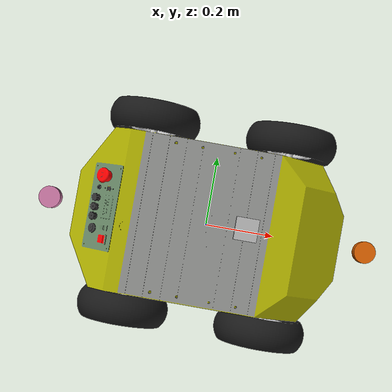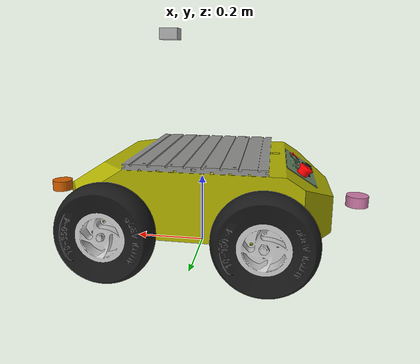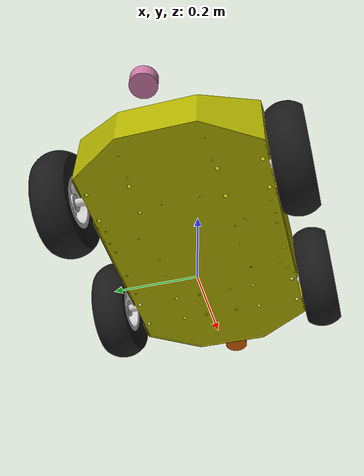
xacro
<?xml version="1.0"?>
	<!-- Revolute-Revolute Manipulator -->
	<robot name="autolabor_pro1" xmlns:xacro="http://www.ros.org/wiki/xacro">

	<xacro:property name="PI" value="3.1415926535897931"/>
	<xacro:property name="shaft_spacing_f" value="0.19649" />
	<xacro:property name="shaft_spacing_b" value="0.18988" />
	<xacro:property name="wheel_spacing_2" value="0.2643" />
	<xacro:property name="height" value="0.11913" />
	<xacro:arg name="lidar2d" default="fslidar" />
	<xacro:arg name="lidar3d" default="rs16" />
	<xacro:arg name="chassis" default="M1" />
	<!-- Base Link -->
	<link name="base_link">
		<collision>
			<origin xyz="0 0 0.18288" rpy="0 0 0"/>
			<geometry>
				<box size="0.7248 0.4302 0.195"/>
			</geometry>
		</collision>

		<visual>
			<origin xyz="0 0 0" rpy="0 0 0"/>
			<geometry>
				<mesh filename="package://autolabor_description/meshes/pro1_body_color.dae"/>
			</geometry>
		</visual>

	</link>

	<link name="left_front_wheel">
		<collision>
			<origin xyz="0 0 0" rpy="1.5708 0 0"/>
			<geometry>
				<cylinder length="0.0822" radius="0.127"/>
			</geometry>
		</collision>

		<visual>
			<origin xyz="0 0 0" rpy="0 0 0"/>
			<geometry>
				<mesh filename="package://autolabor_description/meshes/pro1_wheel_color.dae"/>
			</geometry>
		</visual>

		<inertial>
			<origin xyz="0 0 0" rpy="0 0 0"/>
			<mass value="1.5"/>
			<inertia ixx="0.013" ixy="0.0" ixz="0.0" iyy="0.0074" iyz="0.0" izz="0.0074"/>
		</inertial>
	</link>

	<link name="left_back_wheel">
		<collision>
			<origin xyz="0 0 0" rpy="1.5708 0 0"/>
			<geometry>
				<cylinder length="0.0822" radius="0.127"/>
			</geometry>
		</collision>

		<visual>
			<origin xyz="0 0 0" rpy="0 0 0"/>
			<geometry>
				<mesh filename="package://autolabor_description/meshes/pro1_wheel_color.dae"/>
			</geometry>
		</visual>

		<inertial>
			<origin xyz="0 0 0" rpy="0 0 0"/>
			<mass value="1.5"/>
			<inertia ixx="0.013" ixy="0.0" ixz="0.0" iyy="0.0074" iyz="0.0" izz="0.0074"/>
		</inertial>
	</link>

	<link name="right_front_wheel">
		<collision>
			<origin xyz="0 0 0" rpy="1.5708 0 0"/>
			<geometry>
				<cylinder length="0.0822" radius="0.127"/>
			</geometry>
		</collision>

		<visual>
			<origin xyz="0 0 0" rpy="0 0 ${PI}"/>
			<geometry>
				<mesh filename="package://autolabor_description/meshes/pro1_wheel_color.dae"/>
			</geometry>
		</visual>

		<inertial>
			<origin xyz="0 0 0" rpy="0 0 ${PI}"/>
			<mass value="1.5"/>
			<inertia ixx="0.013" ixy="0.0" ixz="0.0" iyy="0.0074" iyz="0.0" izz="0.0074"/>
		</inertial>
	</link>

	<link name="right_back_wheel">
		<collision>
			<origin xyz="0 0 0" rpy="1.5708 0 0"/>
			<geometry>
				<cylinder length="0.0822" radius="0.127"/>
			</geometry>
		</collision>

		<visual>
			<origin xyz="0 0 0" rpy="0 0 ${PI}"/>
			<geometry>
				<mesh filename="package://autolabor_description/meshes/pro1_wheel_color.dae"/>
			</geometry>
		</visual>

		<inertial>
			<origin xyz="0 0 0" rpy="0 0 ${PI}"/>
			<mass value="1.5"/>
			<inertia ixx="0.013" ixy="0.0" ixz="0.0" iyy="0.0074" iyz="0.0" izz="0.0074"/>
		</inertial>
	</link>

	<link name="lidar_front">
		<collision>
			<origin xyz="0 0 0" rpy="0 0 0"/>
			<geometry>
				<cylinder length="0.05" radius="0.03"/>
			</geometry>
		</collision>

		<visual>
			<origin xyz="0 0 0" rpy="0 0 0"/>
			<geometry>
				<cylinder length="0.03" radius="0.03"/>
			</geometry>
		</visual>

		<inertial>
			<origin xyz="0 0 0" rpy="0 0 0"/>
			<mass value="0.1"/>
			<inertia ixx="0.0074" ixy="0.0" ixz="0.0" iyy="0.0074" iyz="0.0" izz="0.013"/>
		</inertial>
	</link>

	<link name="lidar_back">
		<collision>
			<origin xyz="0 0 0" rpy="0 0 0"/>
			<geometry>
				<cylinder length="0.03" radius="0.03"/>
			</geometry>
		</collision>

		<visual>
			<origin xyz="0 0 0" rpy="0 0 0"/>
			<geometry>
				<cylinder length="0.03" radius="0.03"/>
			</geometry>
		</visual>

		<inertial>
			<origin xyz="0 0 0" rpy="0 0 0"/>
			<mass value="0.1"/>
			<inertia ixx="0.0074" ixy="0.0" ixz="0.0" iyy="0.0074" iyz="0.0" izz="0.013"/>
		</inertial>
	</link>

	<link name="tag">
		<collision>
			<origin xyz="0 0 0" rpy="0 0 0"/>
			<geometry>
				<box size="0.05 0.05 0.03"/>
			</geometry>
		</collision>

		<visual>
			<origin xyz="0 0 0" rpy="0 0 0"/>
			<geometry>
				<box size="0.05 0.05 0.03"/>
			</geometry>
		</visual>

		<inertial>
			<origin xyz="0 0 0" rpy="0 0 0"/>
			<mass value="0.1"/>
			<inertia ixx="0.0074" ixy="0.0" ixz="0.0" iyy="0.0074" iyz="0.0" izz="0.013"/>
		</inertial>
	</link>

	<joint name="joint_left_front" type="continuous">
		<parent link="base_link"/>
		<child link="left_front_wheel"/>
		<origin xyz="${shaft_spacing_f} ${wheel_spacing_2} ${height}" rpy="0 0 0"/>
		<axis xyz="0 1 0"/>
		<dynamics damping="0.7"/>
	</joint>

	<joint name="joint_left_back" type="continuous">
		<parent link="base_link"/>
		<child link="left_back_wheel"/>
		<origin xyz="-${shaft_spacing_b} ${wheel_spacing_2} ${height}" rpy="0 0 0"/>
		<axis xyz="0 1 0"/>
		<dynamics damping="0.7"/>
	</joint>

	<joint name="joint_right_front" type="continuous">
		<parent link="base_link"/>
		<child link="right_front_wheel"/>
		<origin xyz="${shaft_spacing_f} -${wheel_spacing_2} ${height}" rpy="0 0 0"/>
		<axis xyz="0 1 0"/>
		<dynamics damping="0.7"/>
	</joint>

	<joint name="joint_right_back" type="continuous">
		<parent link="base_link"/>
		<child link="right_back_wheel"/>
		<origin xyz="-${shaft_spacing_b} -${wheel_spacing_2} ${height}" rpy="0 0 0"/>
		<axis xyz="0 1 0"/>
		<dynamics damping="0.7"/>
	</joint>

	<xacro:if value="${'$(arg lidar2d)' == 'fslidar'}">
		<joint name="laser_front_link_joint" type="fixed">
			<parent link="base_link"/>
			<child link="lidar_front"/>
			<origin xyz="0.4435 0.0 0.15" rpy="3.14 0.0 0.0"/>
		</joint>

		<joint name="laser_back_link_joint" type="fixed">
			<parent link="base_link"/>
			<child link="lidar_back"/>
			<origin xyz="-0.4355 0.0 0.15" rpy="3.14 0.0 3.14"/>
		</joint>
	</xacro:if>

    <xacro:if value="${'$(arg chassis)' == 'AP1'}">
        <xacro:if value="${'$(arg lidar2d)' == 'ldlidar'}">
        		<joint name="laser_front_link_joint" type="fixed">
        			<parent link="base_link"/>
        			<child link="lidar_front"/>
        			<origin xyz="0.4435 0.0 0.15" rpy="3.14 0.0 1.57"/>
        		</joint>

        		<joint name="laser_back_link_joint" type="fixed">
        			<parent link="base_link"/>
        			<child link="lidar_back"/>
        			<origin xyz="-0.4355 0.0 0.15" rpy="3.14 0.0 -1.57"/>
        		</joint>
        	</xacro:if>
	</xacro:if>

	<xacro:if value="${'$(arg chassis)' == 'M1'}">
            <xacro:if value="${'$(arg lidar2d)' == 'ldlidar'}">
            		<joint name="laser_front_link_joint" type="fixed">
            			<parent link="base_link"/>
            			<child link="lidar_front"/>
            			<origin xyz="0.316 0.0 0.15" rpy="0 0.0 -1.57"/>
            		</joint>

            		<joint name="laser_back_link_joint" type="fixed">
            			<parent link="base_link"/>
            			<child link="lidar_back"/>
            			<origin xyz="-0.316 0.0 0.15" rpy="0 0.0 1.57"/>
            		</joint>
            	</xacro:if>
    </xacro:if>

	<joint name="tag_link_joint" type="fixed">
		<parent link="base_link"/>
		<child link="tag"/>
		<origin xyz="0.09 0.0 0.60"/>
	</joint>

</robot>
